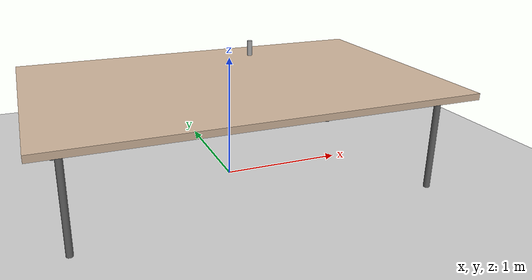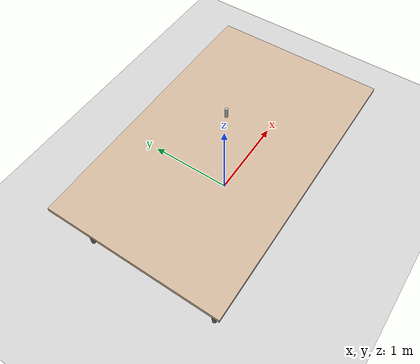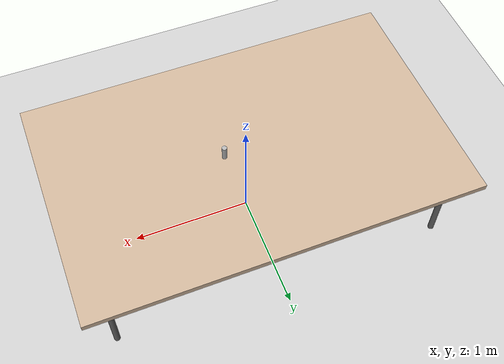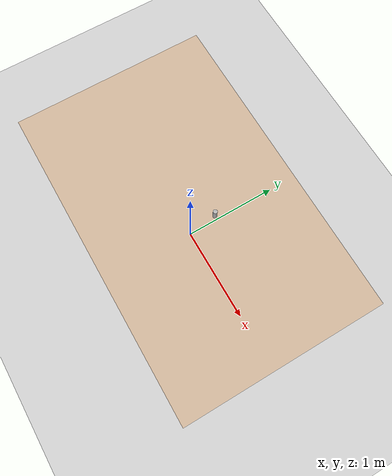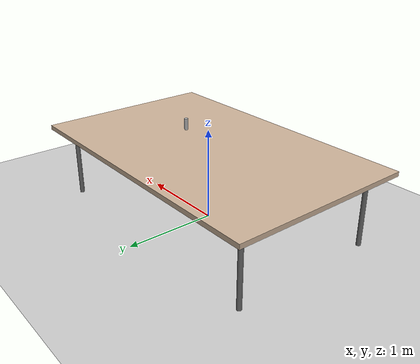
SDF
<sdf version="1.7">
 <world name="default">
  <plugin filename="gz-sim-physics-system" name="gz::sim::systems::Physics"/>
  <plugin filename="gz-sim-user-commands-system" name="gz::sim::systems::UserCommands"/>
  <plugin filename="gz-sim-scene-broadcaster-system" name="gz::sim::systems::SceneBroadcaster"/>
  <plugin filename="gz-sim-sensors-system" name="gz::sim::systems::Sensors">
   <render_engine>ogre2</render_engine>
  </plugin>
  <gravity>0.0 0.0 -9.8</gravity>
  <include><uri>https://fuel.gazebosim.org/1.0/OpenRobotics/models/Sun</uri></include>
  <include><uri>https://fuel.gazebosim.org/1.0/OpenRobotics/models/Ground Plane</uri></include>
  <model name="big_table">
   <static>true</static>
   <link name="table_top">
    <pose>0.0 0.0 0.8 0 0 0</pose>
    <visual name="visual">
     <geometry><box><size>3.2 2.0 0.05</size></box></geometry>
     <material>
      <ambient>0.8 0.7 0.6 1</ambient>
      <diffuse>0.8 0.7 0.6 1</diffuse>
      <specular>0.0 0.0 0.0 1</specular>
     </material>
    </visual>
    <collision name="collision"><geometry><box><size>3.2 2.0 0.05</size></box></geometry></collision>
   </link>
   <link name="leg_front_left">
    <pose>-1.4 0.8 0.4 0 0 0</pose>
    <visual name="visual">
     <geometry><cylinder><radius>0.025</radius><length>0.8</length></cylinder></geometry>
     <material><ambient>0.4 0.4 0.4 1</ambient><diffuse>0.4 0.4 0.4 1</diffuse></material>
    </visual>
    <collision name="collision">
     <geometry><cylinder><radius>0.025</radius><length>0.8</length></cylinder></geometry>
    </collision>
   </link>
   <link name="leg_front_right">
    <pose>1.4 0.8 0.4 0 0 0</pose>
    <visual name="visual">
     <geometry><cylinder><radius>0.025</radius><length>0.8</length></cylinder></geometry>
     <material><ambient>0.4 0.4 0.4 1</ambient><diffuse>0.4 0.4 0.4 1</diffuse></material>
    </visual>
    <collision name="collision">
     <geometry><cylinder><radius>0.025</radius><length>0.8</length></cylinder></geometry>
    </collision>
   </link>
   <link name="leg_back_left">
    <pose>-1.4 -0.8 0.4 0 0 0</pose>
    <visual name="visual">
     <geometry><cylinder><radius>0.025</radius><length>0.8</length></cylinder></geometry>
     <material><ambient>0.4 0.4 0.4 1</ambient><diffuse>0.4 0.4 0.4 1</diffuse></material>
    </visual>
    <collision name="collision">
     <geometry><cylinder><radius>0.025</radius><length>0.8</length></cylinder></geometry>
    </collision>
   </link>
   <link name="leg_back_right">
    <pose>1.4 -0.8 0.4 0 0 0</pose>
    <visual name="visual">
     <geometry><cylinder><radius>0.025</radius><length>0.8</length></cylinder></geometry>
     <material><ambient>0.4 0.4 0.4 1</ambient><diffuse>0.4 0.4 0.4 1</diffuse></material>
    </visual>
    <collision name="collision">
     <geometry><cylinder><radius>0.025</radius><length>0.8</length></cylinder></geometry>
    </collision>
   </link>
   <joint name="joint_leg_front_left" type="fixed">
    <parent>table_top</parent>
    <child>leg_front_left</child>
    <pose>-1.4 0.8 -0.4 0 0 0</pose>
   </joint>
   <joint name="joint_leg_front_right" type="fixed">
    <parent>table_top</parent>
    <child>leg_front_right</child>
    <pose>1.4 0.8 -0.4 0 0 0</pose>
   </joint>
   <joint name="joint_leg_back_left" type="fixed">
    <parent>table_top</parent>
    <child>leg_back_left</child>
    <pose>-1.4 -0.8 -0.4 0 0 0</pose>
   </joint>
   <joint name="joint_leg_back_right" type="fixed">
    <parent>table_top</parent>
    <child>leg_back_right</child>
    <pose>1.4 -0.8 -0.4 0 0 0</pose>
   </joint>
  </model>
  <include><uri>model://red_cylinder</uri><name>red_cylinder</name><pose>0.22 0.12 0.975 0 0 0</pose></include>
  <scene><shadows>false</shadows></scene>
 </world>
</sdf>

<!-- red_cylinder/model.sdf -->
<sdf version='1.6'>
  <model name='red_cylinder'>
    <link name='link_2'>
      <inertial>
        <mass>0.00028274</mass>
        <inertia>
          <ixx>3e-07</ixx>
          <ixy>0</ixy>
          <ixz>0</ixz>
          <iyy>3e-07</iyy>
          <iyz>0</iyz>
          <izz>1.3e-07</izz>
        </inertia>
        <pose frame=''>0 0 0 0 -0 0</pose>
      </inertial>
      <pose frame=''>-0 0 0.06 0 -0 0</pose>
      <gravity>1</gravity>
      <self_collide>0</self_collide>
      <kinematic>0</kinematic>
      <enable_wind>0</enable_wind>
      <visual name='visual'>
        <pose frame=''>0 0 0 0 -0 0</pose>
        <geometry>
          <cylinder>
            <radius>0.02</radius>
            <length>0.12</length>
          </cylinder>
        </geometry>
        <material>
          <lighting>1</lighting>
          <shader type='pixel'>
            <normal_map>__default__</normal_map>
          </shader>
          <ambient>1 0 0 1</ambient>
          <diffuse>0.7 0.7 0.7 1</diffuse>
          <specular>0.01 0.01 0.01 1</specular>
          <emissive>0 0 0 1</emissive>
        </material>
        <transparency>0</transparency>
        <cast_shadows>1</cast_shadows>
      </visual>
      <collision name='collision'>
        <laser_retro>0</laser_retro>
        <max_contacts>10</max_contacts>
        <pose frame=''>0 0 0 0 -0 0</pose>
        <geometry>
          <cylinder>
            <radius>0.02</radius>
            <length>0.12</length>
          </cylinder>
        </geometry>
        <surface>
          <friction>
            <ode>
              <mu>1</mu>
              <mu2>1</mu2>
              <fdir1>0 0 0</fdir1>
              <slip1>0</slip1>
              <slip2>0</slip2>
            </ode>
            <torsional>
              <coefficient>1</coefficient>
              <patch_radius>0</patch_radius>
              <surface_radius>0</surface_radius>
              <use_patch_radius>1</use_patch_radius>
              <ode>
                <slip>0</slip>
              </ode>
            </torsional>
          </friction>
          <bounce>
            <restitution_coefficient>0</restitution_coefficient>
            <threshold>1e+06</threshold>
          </bounce>
          <contact>
            <collide_without_contact>0</collide_without_contact>
            <collide_without_contact_bitmask>1</collide_without_contact_bitmask>
            <collide_bitmask>1</collide_bitmask>
            <ode>
              <soft_cfm>0</soft_cfm>
              <soft_erp>0.2</soft_erp>
              <kp>1e+13</kp>
              <kd>1</kd>
              <max_vel>0.01</max_vel>
              <min_depth>0</min_depth>
            </ode>
            <bullet>
              <split_impulse>1</split_impulse>
              <split_impulse_penetration_threshold>-0.01</split_impulse_penetration_threshold>
              <soft_cfm>0</soft_cfm>
              <soft_erp>0.2</soft_erp>
              <kp>1e+13</kp>
              <kd>1</kd>
            </bullet>
          </contact>
        </surface>
      </collision>
    </link>
    <static>0</static>
    <allow_auto_disable>1</allow_auto_disable>
  </model>
</sdf>
